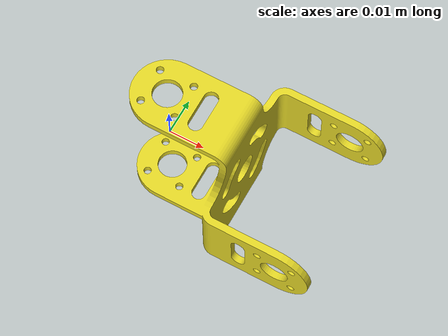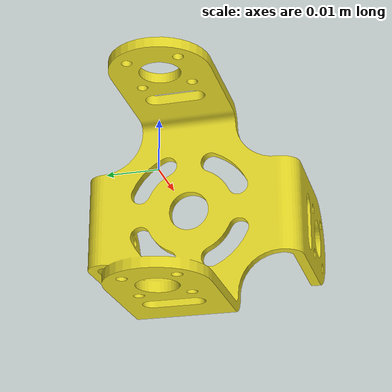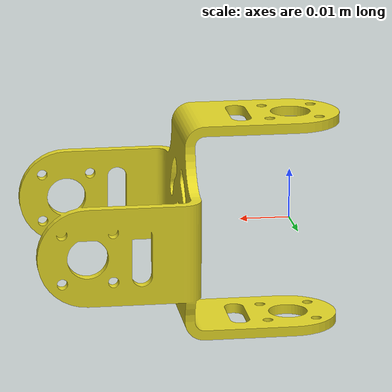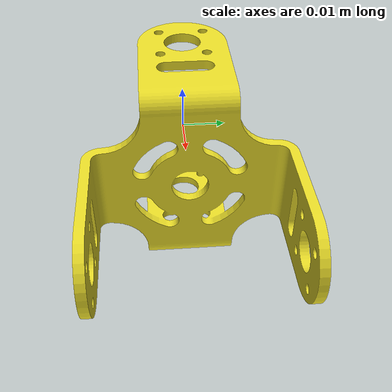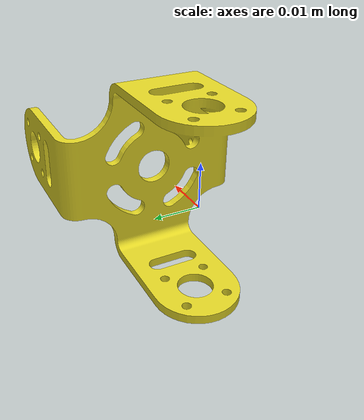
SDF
<?xml version="1.0" ?>

  <sdf version="1.5">
    <model name="usl_quadruped3_bicopter_coxa">
      <link name="base">
      <pose>0 0 0 0 0 0</pose>
      <inertial>
        <pose>0 0 0 0 0 0</pose>
        <mass>0.1</mass>
        <inertia>
          <ixx>0.001</ixx>
          <iyy>0.001</iyy>
          <izz>0.001</izz>
          <ixy>0</ixy>
          <ixz>0</ixz>
          <iyz>0</iyz>
        </inertia>
      </inertial>
      <collision name="usl_quadruped3_bicopter_coxa_collision">
        <pose>0 0 0  0 0 0</pose>
        <geometry>
          <box>
            <size>0.01 0.01 0.01</size>
          </box>
        </geometry>
        <surface>
          <friction>
            <ode>
              <mu2>1</mu2>
              <fdir1>1 0 0</fdir1>
              <mu1>1.0</mu1>
            </ode>
          </friction>
          <contact>
            <ode>
              <kp>1e+15</kp>
              <kd>1e+13</kd>
            </ode>
          </contact>
        </surface>
      </collision>
      <visual name="base_visual">
        <geometry>
          <mesh>
            <uri>model://usl_quadruped3_bicopter_coxa/meshes/coxa.dae</uri>
          </mesh>
        </geometry>
        <material>
          <script>
            <name>Gazebo/Yellow</name>
          </script>
        </material>
      </visual>
    </link>

  </model>
</sdf>
